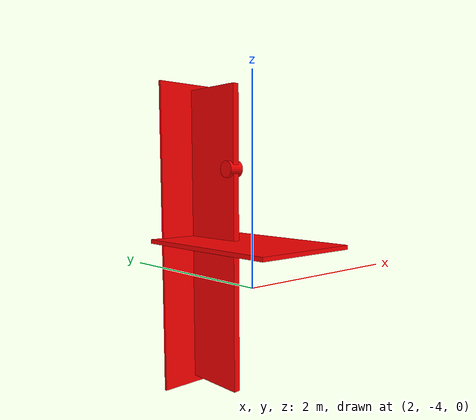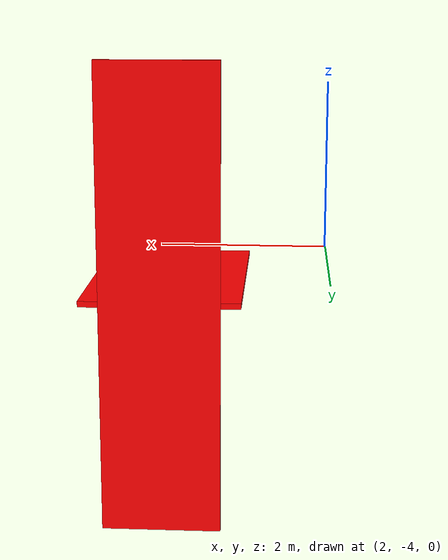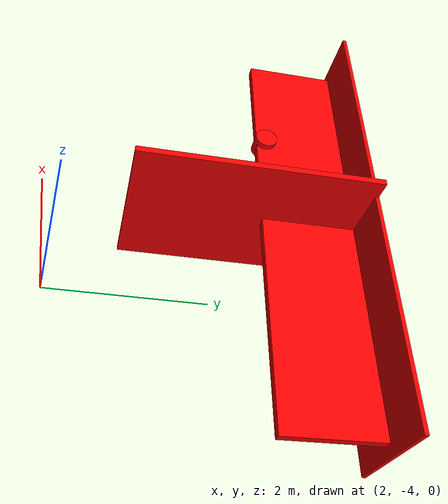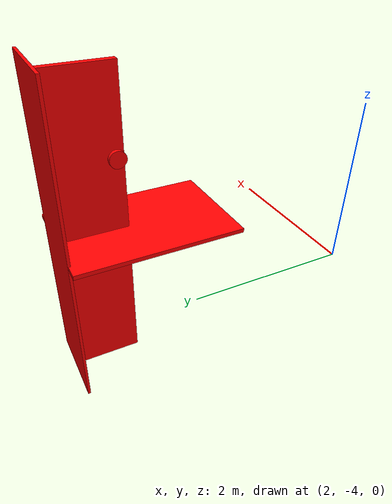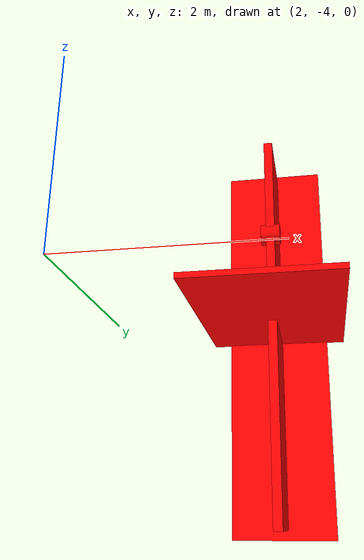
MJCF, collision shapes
<mujoco model="aesir_puerta">

  <compiler angle="radian" autolimits="true" meshdir=""/>

  <asset>
    <material name="matdoor" rgba="0.6 0.5 0.4 1"/>
    <material name="mathandle" rgba="1 0.8 0 1"/>

    <mesh name="puerta_marco"  file="meshes/door/base_link.stl" scale="0.001 0.001 0.001"/>
    <mesh name="puerta_hoja"   file="meshes/door/puerta_1.stl"  scale="0.001 0.001 0.001"/>
    <mesh name="puerta_manija" file="meshes/door/manija_1.stl"  scale="0.001 0.001 0.001"/>
  </asset>

  <worldbody>
    <body name="door_frame" pos="3.7 -2 0.08">
      <geom type="mesh" mesh="puerta_marco" contype="0" conaffinity="0"/>
      <geom name="door_frame1" type="box" size=".6 0.02 2.35" pos="-0.0009 1.19 0" rgba="1 0 0 0.5"/>
      <geom name="door_floor" type="box" size=".8 1.2 .03" pos="0 0 0" rgba="1 0 0 0.5"/>

      <body name="door_leaf" pos="0 1.05 0.01">
        <joint name="door_hinge" type="hinge" axis="0 0 1" pos="0 0 0" range="-1.5 1.5" damping="3.0"/>
        <geom name="dl_mesh" type="mesh" mesh="puerta_hoja" pos="0 -1.05 -0.009" material="matdoor" contype="0" conaffinity="0"/>
        <geom name="door_leaf" type="box" size=".05 0.5 2.25" pos="-0.0009 -0.36 0" rgba="1 0 0 0.5"/>

        <body name="door_handle" pos="0.0 -1.32 -1.06">
          <joint name="handle_hinge" type="hinge" axis="1 0 0" pos="0 0.554 2.103" range="-1.0 0.0" damping="0.3" stiffness="2.0"/>
          <geom name="dh_mesh" type="mesh" mesh="puerta_manija" pos="-0.005 0.27 1.05" material="mathandle" contype="0" conaffinity="0"/>
          <geom name="col_manija" type="cylinder" size="0.12 0.11" pos="0 .56 2.113" euler="0 1.5707 0" rgba="1 0 0 0.5"/>
        </body>
      </body>
    </body>
  </worldbody>
</mujoco>
